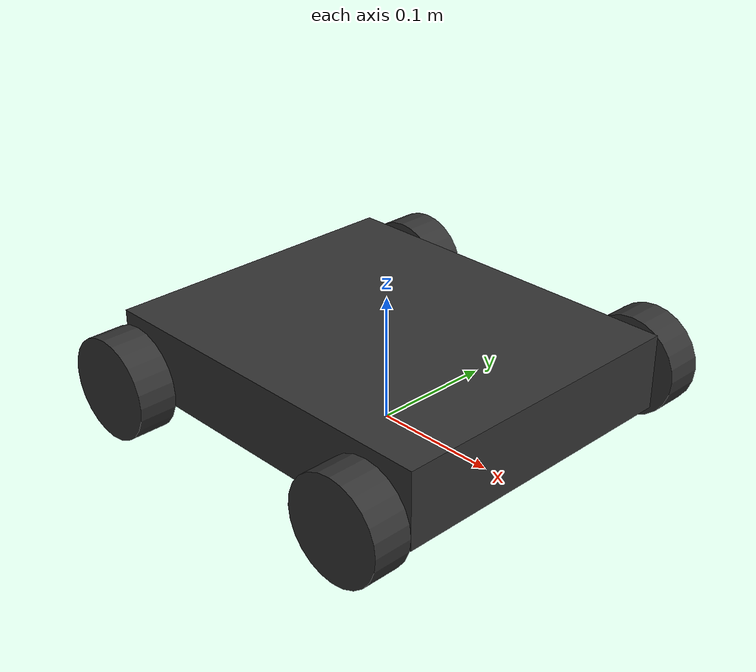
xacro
<?xml version="1.0"?>
<!-- TEST FIXTURE (stand-in for the course robot mecanum) -->
<robot name="mecanum">
<link name="base_footprint"/>
<link name="base_link"><visual><geometry><box size="0.3 0.25 0.06"/></geometry><material name="m_base_link"><color rgba="0.2 0.2 0.2 1"/></material></visual><collision><geometry><box size="0.3 0.25 0.06"/></geometry></collision><inertial><mass value="0.5"/><inertia ixx="0.001" ixy="0" ixz="0" iyy="0.001" iyz="0" izz="0.001"/></inertial></link>
<joint name="base_joint" type="fixed"><parent link="base_footprint"/><child link="base_link"/><origin xyz="0 0 0.05"/></joint>
<link name="front_left_wheel"><visual><geometry><cylinder radius="0.04" length="0.03"/></geometry><material name="m_front_left_wheel"><color rgba="0.2 0.2 0.2 1"/></material></visual><collision><geometry><cylinder radius="0.04" length="0.03"/></geometry></collision><inertial><mass value="0.5"/><inertia ixx="0.001" ixy="0" ixz="0" iyy="0.001" iyz="0" izz="0.001"/></inertial></link>
<joint name="front_left_wheel_joint" type="continuous"><parent link="base_link"/><child link="front_left_wheel"/><origin xyz="0.12 0.15 -0.01" rpy="-1.5708 0 0"/><axis xyz="0 0 1"/></joint>
<link name="front_right_wheel"><visual><geometry><cylinder radius="0.04" length="0.03"/></geometry><material name="m_front_right_wheel"><color rgba="0.2 0.2 0.2 1"/></material></visual><collision><geometry><cylinder radius="0.04" length="0.03"/></geometry></collision><inertial><mass value="0.5"/><inertia ixx="0.001" ixy="0" ixz="0" iyy="0.001" iyz="0" izz="0.001"/></inertial></link>
<joint name="front_right_wheel_joint" type="continuous"><parent link="base_link"/><child link="front_right_wheel"/><origin xyz="0.12 -0.15 -0.01" rpy="-1.5708 0 0"/><axis xyz="0 0 1"/></joint>
<link name="rear_left_wheel"><visual><geometry><cylinder radius="0.04" length="0.03"/></geometry><material name="m_rear_left_wheel"><color rgba="0.2 0.2 0.2 1"/></material></visual><collision><geometry><cylinder radius="0.04" length="0.03"/></geometry></collision><inertial><mass value="0.5"/><inertia ixx="0.001" ixy="0" ixz="0" iyy="0.001" iyz="0" izz="0.001"/></inertial></link>
<joint name="rear_left_wheel_joint" type="continuous"><parent link="base_link"/><child link="rear_left_wheel"/><origin xyz="-0.12 0.15 -0.01" rpy="-1.5708 0 0"/><axis xyz="0 0 1"/></joint>
<link name="rear_right_wheel"><visual><geometry><cylinder radius="0.04" length="0.03"/></geometry><material name="m_rear_right_wheel"><color rgba="0.2 0.2 0.2 1"/></material></visual><collision><geometry><cylinder radius="0.04" length="0.03"/></geometry></collision><inertial><mass value="0.5"/><inertia ixx="0.001" ixy="0" ixz="0" iyy="0.001" iyz="0" izz="0.001"/></inertial></link>
<joint name="rear_right_wheel_joint" type="continuous"><parent link="base_link"/><child link="rear_right_wheel"/><origin xyz="-0.12 -0.15 -0.01" rpy="-1.5708 0 0"/><axis xyz="0 0 1"/></joint>
</robot>
